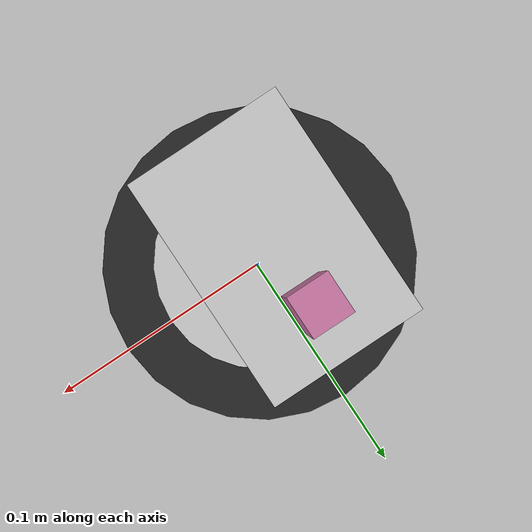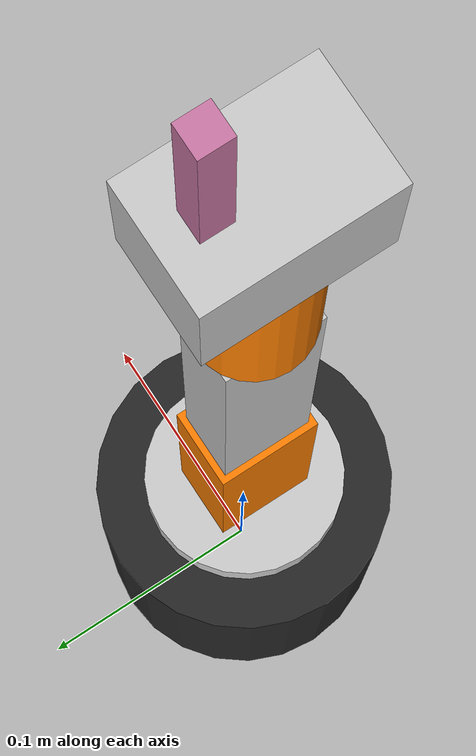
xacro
<?xml version="1.0"?>
<robot xmlns:xacro="http://www.ros.org/wiki/xacro" name="custom_6dof_arm_final">
    <xacro:arg name="initial_positions_file" default="initial_positions.yaml" />

    <!-- Import custom_6dof_arm_final urdf file -->
    <xacro:include filename="$(find arm_description_pkg)/urdf/idk_arm.urdf" />

    <!-- Import control_xacro -->
    <xacro:include filename="custom_6dof_arm_final.ros2_control.xacro" />

    <xacro:custom_6dof_arm_final_ros2_control name="FakeSystem" initial_positions_file="$(arg initial_positions_file)"/>

</robot>

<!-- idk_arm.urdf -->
<robot name="custom_6dof_arm_final">

  <material name="black"><color rgba="0.15 0.15 0.15 1.0"/></material>
  <material name="silver"><color rgba="0.8 0.8 0.8 1.0"/></material>
  <material name="orange"><color rgba="1.0 0.5 0.0 1.0"/></material>

  <link name="base_link">
    <visual><origin xyz="0 0 0.063"/><geometry><cylinder radius="0.06" length="0.126"/></geometry><material name="black"/></visual>
    <collision><origin xyz="0 0 0.063"/><geometry><cylinder radius="0.06" length="0.126"/></geometry></collision>
  </link>

  <!-- Group: arm_group -->
  <joint name="joint_6_base" type="revolute">
    <parent link="base_link"/><child link="link_shoulder"/><origin xyz="0 0 0.126"/><axis xyz="0 0 1"/>
    <limit lower="-1.5708" upper="1.5708" effort="10.0" velocity="1.0"/>
  </joint>

  <link name="link_shoulder">
    <visual><origin xyz="0 0 0.0075"/><geometry><cylinder radius="0.04" length="0.015"/></geometry><material name="silver"/></visual>
    <collision><origin xyz="0 0 0.0075"/><geometry><cylinder radius="0.04" length="0.015"/></geometry></collision>
  </link>

  <joint name="joint_5_shoulder" type="revolute">
    <parent link="link_shoulder"/><child link="link_bicep"/><origin xyz="0 0 0.015"/><axis xyz="0 -1 0"/>
    <limit lower="-1.2217" upper="1.2217" effort="10.0" velocity="1.0"/>
  </joint>

  <link name="link_bicep">
    <visual><origin xyz="0 0 0.0525"/><geometry><box size="0.03 0.04 0.105"/></geometry><material name="orange"/></visual>
    <collision><origin xyz="0 0 0.0525"/><geometry><box size="0.03 0.04 0.105"/></geometry></collision>
  </link>

  <joint name="joint_4_elbow" type="revolute">
    <parent link="link_bicep"/><child link="link_forearm"/><origin xyz="0 0 0.105"/><axis xyz="0 -1 0"/>
    <limit lower="-1.3963" upper="1.3963" effort="10.0" velocity="1.0"/>
  </joint>

  <link name="link_forearm">
    <visual><origin xyz="0 0 0.0725"/><geometry><box size="0.025 0.035 0.145"/></geometry><material name="silver"/></visual>
    <collision><origin xyz="0 0 0.0725"/><geometry><box size="0.025 0.035 0.145"/></geometry></collision>
  </link>

  <joint name="joint_3_wrist_pitch" type="revolute">
    <parent link="link_forearm"/><child link="link_wrist_roll"/><origin xyz="0 0 0.145"/><axis xyz="0 1 0"/>
    <limit lower="-1.5708" upper="1.5708" effort="10.0" velocity="1.0"/>
  </joint>

  <link name="link_wrist_roll">
    <visual><origin xyz="0 0 0.0375"/><geometry><cylinder radius="0.02" length="0.075"/></geometry><material name="orange"/></visual>
    <collision><origin xyz="0 0 0.0375"/><geometry><cylinder radius="0.02" length="0.075"/></geometry></collision>
  </link>

  <joint name="joint_2_wrist_roll" type="revolute">
    <parent link="link_wrist_roll"/><child link="link_gripper_base"/><origin xyz="0 0 0.075"/><axis xyz="0 0 1"/>
    <limit lower="-1.3963" upper="1.3963" effort="10.0" velocity="1.0"/>
  </joint>

  <link name="link_gripper_base">
    <visual><origin xyz="0 0 0.0235"/><geometry><box size="0.04 0.06 0.047"/></geometry><material name="silver"/></visual>
    <collision><origin xyz="0 0 0.0235"/><geometry><box size="0.04 0.06 0.047"/></geometry></collision>
  </link>

  <!-- Simplified Gripper Joint for Setup Assistant -->
  <joint name="joint_1_gripper" type="revolute">
    <parent link="link_gripper_base"/><child link="link_gripper_left_finger"/><origin xyz="0 0.015 0.047"/><axis xyz="1 0 0"/>
    <limit lower="-0.3491" upper="0.6981" effort="10.0" velocity="1.0"/>
  </joint>

  <link name="link_gripper_left_finger">
    <visual><origin xyz="0 0 0.03"/><geometry><box size="0.01 0.01 0.06"/></geometry></visual>
    <collision><origin xyz="0 0 0.03"/><geometry><box size="0.01 0.01 0.06"/></geometry></collision>
  </link>

</robot>
